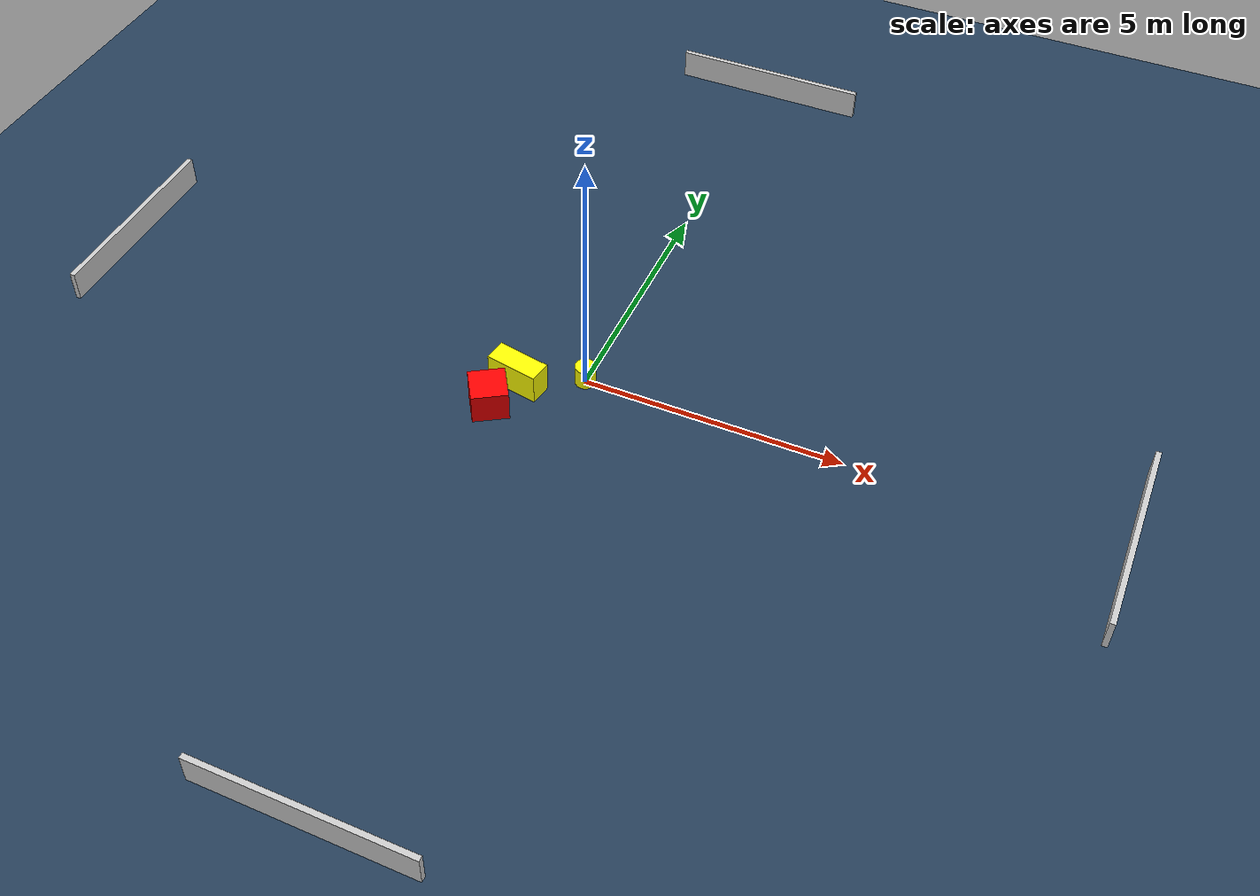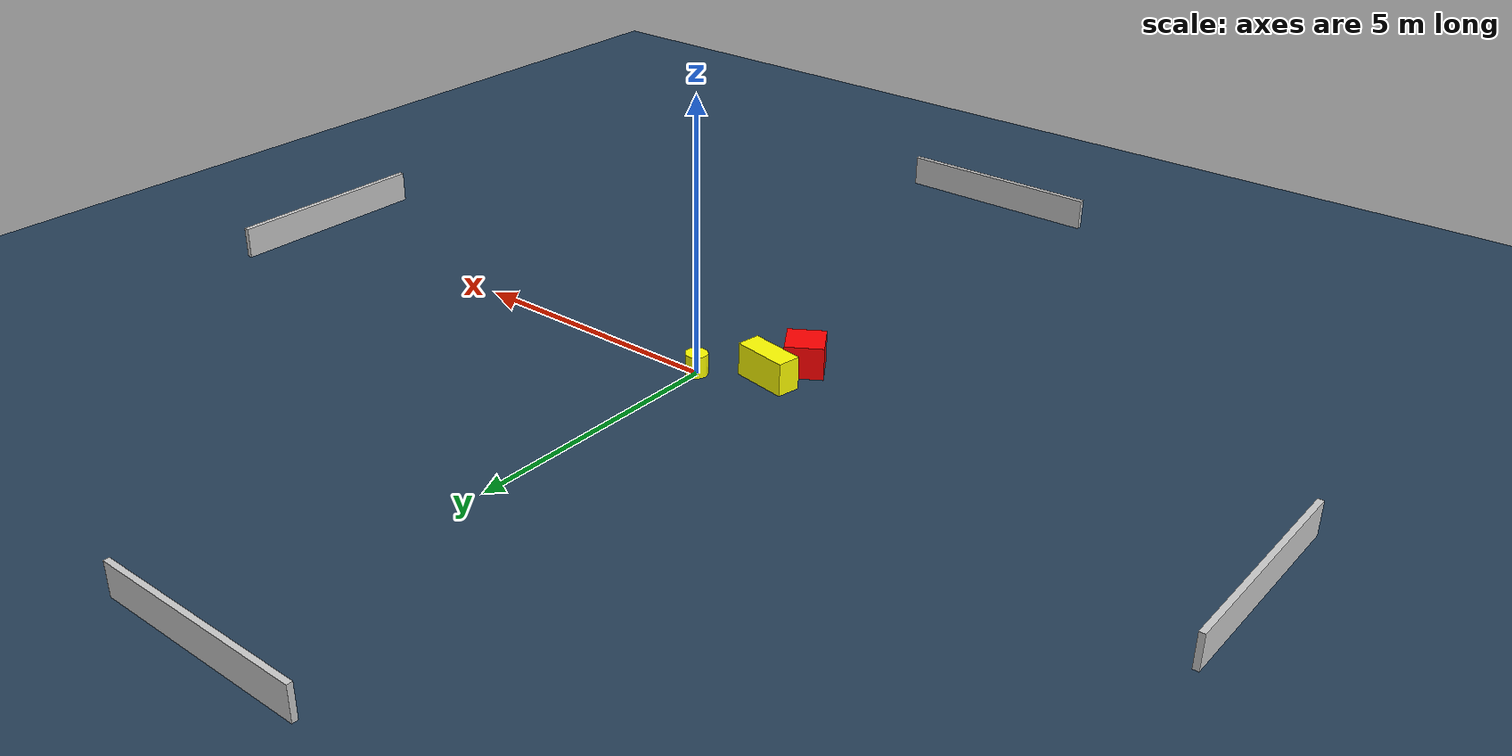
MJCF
<?xml version="1.0" ?>
<mujoco model="generated_environment">
  <option timestep="0.01" integrator="RK4" cone="elliptic"/>
  <default>
    <geom density="1"/>
  </default>
  <asset>
    <texture builtin="gradient" height="3072" name="skybox" rgb1="0.3 0.5 0.7" rgb2="0 0 0" type="skybox" width="512"/>
    <texture builtin="checker" height="300" name="groundplane" rgb1="0.2 0.3 0.4" rgb2="0.1 0.2 0.3" type="2d" width="300"/>
    <material name="groundplane" reflectance="0.2" texrepeat="5 5" texture="groundplane"/>
  </asset>
  <worldbody>
    <light dir="0 0 -1" directional="true" pos="0 0 1.5"/>
    <geom condim="3" friction="0.5 0.005 0.001" material="groundplane" name="floor" pos="0 0 0" size="0 0 0.05" type="plane"/>
    <body name="walls">
      <geom name="wall_1" condim="4" pos="-10.0 0.0 0.3" rgba="0.800000011920929 0.800000011920929 0.800000011920929 1.0" size="0.05 2.0 0.3" type="box"/>
      <geom name="wall_2" condim="4" pos="10.0 0.0 0.3" rgba="0.800000011920929 0.800000011920929 0.800000011920929 1.0" size="0.05 2.0 0.3" type="box"/>
      <geom name="wall_3" condim="4" pos="0.0 -10.0 0.3" rgba="0.800000011920929 0.800000011920929 0.800000011920929 1.0" size="2.0 0.05 0.3" type="box"/>
      <geom name="wall_4" condim="4" pos="0.0 10.0 0.3" rgba="0.800000011920929 0.800000011920929 0.800000011920929 1.0" size="2.0 0.05 0.3" type="box"/>
    </body>
    <body name="robot">
      <joint name="joint_x" type="slide" pos="0 0 0" axis="1 0 0"/>
      <joint name="joint_y" type="slide" pos="0 0 0" axis="0 1 0"/>
      <geom name="robot" type="cylinder" pos="0.0 0.0 0.2" size="0.2 0.2 0.0" mass="5.0" friction="1.0 0.005 0.0001" condim="4" rgba="1.0 1.0 0.0 1.0"/>
    </body>
    <body name="obstacle_1_movable">
      <geom name="obstacle_1_movable" condim="4" pos="-1.1125867046813196 -0.5665124587858253 0.3" euler="0 0 259.8838465466193" friction="0.0 0.005 0.001" rgba="1.0 1.0 0.0 1.0" size="0.21824803036934076 0.5172651607214536 0.3" type="box" mass="0.1"/>
      <joint type="free"/>
    </body>
    <body name="obstacle_2_static">
      <geom name="obstacle_2_static" condim="4" pos="-1.344467285342832 -1.3074766228224648 0.3" euler="0 0 32.30105828364089" friction="0.0 0.005 0.001" rgba="1.0 0.0 0.0 1.0" size="0.3453128015627913 0.3495225769526914 0.3" type="box"/>
    </body>
  </worldbody>
  <actuator>
    <motor name="actuator_x" joint="joint_x" gear="1" ctrlrange="-1 1"/>
    <motor name="actuator_y" joint="joint_y" gear="1" ctrlrange="-1 1"/>
  </actuator>
</mujoco>
